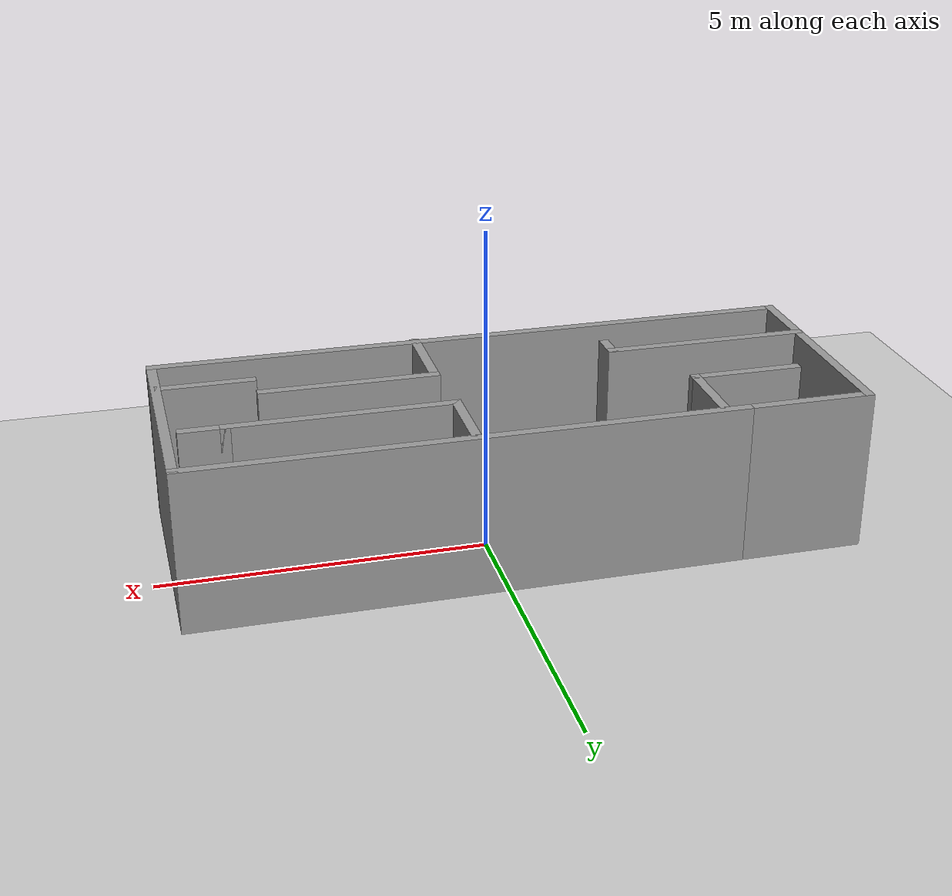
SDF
<sdf version="1.7">
 <world name="default">
  <light name="sun" type="directional">
   <pose>0 0 10 0 -0 0</pose>
   <diffuse>0.8 0.8 0.8 1</diffuse>
   <specular>0.2 0.2 0.2 1</specular>
   <attenuation>
    <range>1000</range>
    <constant>0.9</constant>
    <linear>0.01</linear>
    <quadratic>0.001</quadratic>
   </attenuation>
   <direction>-0.5 0.1 -0.9</direction>
   <spot><inner_angle>0</inner_angle><outer_angle>0</outer_angle><falloff>0</falloff></spot>
  </light>
  <model name="ground_plane">
   <static>1</static>
   <link name="link">
    <collision name="collision">
     <geometry><plane><normal>0 0 1</normal><size>100 100</size></plane></geometry>
     <surface><friction><ode><mu>100</mu><mu2>50</mu2></ode></friction></surface>
    </collision>
    <visual name="visual">
     <cast_shadows>0</cast_shadows>
     <geometry><plane><normal>0 0 1</normal><size>100 100</size></plane></geometry>
     <material>
      <script><uri>file://media/materials/scripts/gazebo.material</uri><name>Gazebo/Grey</name></script>
     </material>
    </visual>
   </link>
  </model>
  <gravity>0 0 -9.8</gravity>
  <magnetic_field>6e-06 2.3e-05 -4.2e-05</magnetic_field>
  <atmosphere type="adiabatic"/>
  <physics type="ode">
   <max_step_size>0.001</max_step_size>
   <real_time_factor>1</real_time_factor>
   <real_time_update_rate>1000</real_time_update_rate>
  </physics>
  <scene><ambient>0.4 0.4 0.4 1</ambient><background>0.7 0.7 0.7 1</background><shadows>1</shadows></scene>
  <audio><device>default</device></audio>
  <spherical_coordinates>
   <surface_model>EARTH_WGS84</surface_model>
   <latitude_deg>0</latitude_deg>
   <longitude_deg>0</longitude_deg>
   <elevation>0</elevation>
   <heading_deg>0</heading_deg>
  </spherical_coordinates>
  <model name="room">
   <pose>-0.391778 -0.298657 0 0 -0 0</pose>
   <link name="Wall_1">
    <collision name="Wall_1_Collision">
     <geometry><box><size>8.5 0.15 2.5</size></box></geometry>
     <pose>0 0 1.25 0 -0 0</pose>
    </collision>
    <visual name="Wall_1_Visual">
     <pose>0 0 1.25 0 -0 0</pose>
     <geometry><box><size>8.5 0.15 2.5</size></box></geometry>
     <material>
      <script><uri>file://media/materials/scripts/gazebo.material</uri><name>Gazebo/Grey</name></script>
      <ambient>1 1 1 1</ambient>
     </material>
     <meta><layer>0</layer></meta>
    </visual>
    <pose>0.875 1.62559 0 0 -0 0</pose>
   </link>
   <link name="Wall_10">
    <collision name="Wall_10_Collision">
     <geometry><box><size>3.25 0.15 2.5</size></box></geometry>
     <pose>0 0 1.25 0 -0 0</pose>
    </collision>
    <visual name="Wall_10_Visual">
     <pose>0 0 1.25 0 -0 0</pose>
     <geometry><box><size>3.25 0.15 2.5</size></box></geometry>
     <material>
      <script><uri>file://media/materials/scripts/gazebo.material</uri><name>Gazebo/Grey</name></script>
      <ambient>1 1 1 1</ambient>
     </material>
     <meta><layer>0</layer></meta>
    </visual>
    <pose>-3.48805 -0.873238 0 0 -0 0</pose>
   </link>
   <link name="Wall_11">
    <collision name="Wall_11_Collision">
     <geometry><box><size>0.5 0.15 2.5</size></box></geometry>
     <pose>0 0 1.25 0 -0 0</pose>
    </collision>
    <visual name="Wall_11_Visual">
     <pose>0 0 1.25 0 -0 0</pose>
     <geometry><box><size>0.5 0.15 2.5</size></box></geometry>
     <material>
      <script><uri>file://media/materials/scripts/gazebo.material</uri><name>Gazebo/Grey</name></script>
      <ambient>1 1 1 1</ambient>
     </material>
     <meta><layer>0</layer></meta>
    </visual>
    <pose>-1.93805 -1.04824 0 0 -0 -1.5708</pose>
   </link>
   <link name="Wall_13">
    <collision name="Wall_13_Collision">
     <geometry><box><size>1.5 0.15 2.5</size></box></geometry>
     <pose>0 0 1.25 0 -0 0</pose>
    </collision>
    <visual name="Wall_13_Visual">
     <pose>0 0 1.25 0 -0 0</pose>
     <geometry><box><size>1.5 0.15 2.5</size></box></geometry>
     <material>
      <script><uri>file://media/materials/scripts/gazebo.material</uri><name>Gazebo/Grey</name></script>
      <ambient>1 1 1 1</ambient>
     </material>
     <meta><layer>0</layer></meta>
    </visual>
    <pose>0.93965 -1.33559 0 0 -0 1.5708</pose>
   </link>
   <link name="Wall_14">
    <collision name="Wall_14_Collision">
     <geometry><box><size>2.75 0.15 2.5</size></box></geometry>
     <pose>0 0 1.25 0 -0 0</pose>
    </collision>
    <visual name="Wall_14_Visual">
     <pose>0 0 1.25 0 -0 0</pose>
     <geometry><box><size>2.75 0.15 2.5</size></box></geometry>
     <material>
      <script><uri>file://media/materials/scripts/gazebo.material</uri><name>Gazebo/Grey</name></script>
      <ambient>1 1 1 1</ambient>
     </material>
     <meta><layer>0</layer></meta>
    </visual>
    <pose>2.23965 -0.660588 0 0 -0 0</pose>
   </link>
   <link name="Wall_16">
    <collision name="Wall_16_Collision">
     <geometry><box><size>1.5 0.15 2.5</size></box></geometry>
     <pose>0 0 1.25 0 -0 0</pose>
    </collision>
    <visual name="Wall_16_Visual">
     <pose>0 0 1.25 0 -0 0</pose>
     <geometry><box><size>1.5 0.15 2.5</size></box></geometry>
     <material>
      <script><uri>file://media/materials/scripts/gazebo.material</uri><name>Gazebo/Grey</name></script>
      <ambient>1 1 1 1</ambient>
     </material>
     <meta><layer>0</layer></meta>
    </visual>
    <pose>4.31255 -1.15096 0 0 -0 0</pose>
   </link>
   <link name="Wall_18">
    <collision name="Wall_18_Collision">
     <geometry><box><size>1.25 0.15 2.5</size></box></geometry>
     <pose>0 0 1.25 0 -0 0</pose>
    </collision>
    <visual name="Wall_18_Visual">
     <pose>0 0 1.25 0 -0 0</pose>
     <geometry><box><size>1.25 0.15 2.5</size></box></geometry>
     <material>
      <script><uri>file://media/materials/scripts/gazebo.material</uri><name>Gazebo/Grey</name></script>
      <ambient>1 1 1 1</ambient>
     </material>
     <meta><layer>0</layer></meta>
    </visual>
    <pose>0.8603 0.957263 0 0 -0 -1.5708</pose>
   </link>
   <link name="Wall_19">
    <collision name="Wall_19_Collision">
     <geometry><box><size>3.5 0.15 2.5</size></box></geometry>
     <pose>0 0 1.25 0 -0 0</pose>
    </collision>
    <visual name="Wall_19_Visual">
     <pose>0 0 1.25 0 -0 0</pose>
     <geometry><box><size>3.5 0.15 2.5</size></box></geometry>
     <material>
      <script><uri>file://media/materials/scripts/gazebo.material</uri><name>Gazebo/Grey</name></script>
      <ambient>1 1 1 1</ambient>
     </material>
     <meta><layer>0</layer></meta>
    </visual>
    <pose>2.5353 0.407262 0 0 -0 0</pose>
   </link>
   <link name="Wall_2">
    <collision name="Wall_2_Collision">
     <geometry><box><size>3.75 0.15 2.5</size></box></geometry>
     <pose>0 0 1.25 0 -0 0</pose>
    </collision>
    <visual name="Wall_2_Visual">
     <pose>0 0 1.25 0 -0 0</pose>
     <geometry><box><size>3.75 0.15 2.5</size></box></geometry>
     <material>
      <script><uri>file://media/materials/scripts/gazebo.material</uri><name>Gazebo/Grey</name></script>
      <ambient>1 1 1 1</ambient>
     </material>
     <meta><layer>0</layer></meta>
    </visual>
    <pose>5.05 -0.174412 0 0 -0 -1.5708</pose>
   </link>
   <link name="Wall_20">
    <collision name="Wall_20_Collision">
     <geometry><box><size>0.75 0.15 2.5</size></box></geometry>
     <pose>0 0 1.25 0 -0 0</pose>
    </collision>
    <visual name="Wall_20_Visual">
     <pose>0 0 1.25 0 -0 0</pose>
     <geometry><box><size>0.75 0.15 2.5</size></box></geometry>
     <material>
      <script><uri>file://media/materials/scripts/gazebo.material</uri><name>Gazebo/Grey</name></script>
      <ambient>1 1 1 1</ambient>
     </material>
     <meta><layer>0</layer></meta>
    </visual>
    <pose>4.5103 0.407262 0 0 -0 0</pose>
   </link>
   <link name="Wall_3">
    <collision name="Wall_3_Collision">
     <geometry><box><size>10.25 0.15 2.5</size></box></geometry>
     <pose>0 0 1.25 0 -0 0</pose>
    </collision>
    <visual name="Wall_3_Visual">
     <pose>0 0 1.25 0 -0 0</pose>
     <geometry><box><size>10.25 0.15 2.5</size></box></geometry>
     <material>
      <script><uri>file://media/materials/scripts/gazebo.material</uri><name>Gazebo/Grey</name></script>
      <ambient>1 1 1 1</ambient>
     </material>
     <meta><layer>0</layer></meta>
    </visual>
    <pose>0 -1.97441 0 0 -0 3.14159</pose>
   </link>
   <link name="Wall_4">
    <collision name="Wall_4_Collision">
     <geometry><box><size>3.75 0.15 2.5</size></box></geometry>
     <pose>0 0 1.25 0 -0 0</pose>
    </collision>
    <visual name="Wall_4_Visual">
     <pose>0 0 1.25 0 -0 0</pose>
     <geometry><box><size>3.75 0.15 2.5</size></box></geometry>
     <material>
      <script><uri>file://media/materials/scripts/gazebo.material</uri><name>Gazebo/Grey</name></script>
      <ambient>1 1 1 1</ambient>
     </material>
     <meta><layer>0</layer></meta>
    </visual>
    <pose>-5.05 -0.174412 0 0 -0 1.5708</pose>
   </link>
   <link name="Wall_5">
    <collision name="Wall_5_Collision">
     <geometry><box><size>1.9 0.15 2.5</size></box></geometry>
     <pose>0 0 1.25 0 -0 0</pose>
    </collision>
    <visual name="Wall_5_Visual">
     <pose>0 0 1.25 0 -0 0</pose>
     <geometry><box><size>1.9 0.15 2.5</size></box></geometry>
     <material>
      <script><uri>file://media/materials/scripts/gazebo.material</uri><name>Gazebo/Grey</name></script>
      <ambient>1 1 1 1</ambient>
     </material>
     <meta><layer>0</layer></meta>
    </visual>
    <pose>-4.175 1.62559 0 0 -0 0</pose>
   </link>
   <link name="Wall_7">
    <collision name="Wall_7_Collision">
     <geometry><box><size>1.25 0.15 2.5</size></box></geometry>
     <pose>0 0 1.25 0 -0 0</pose>
    </collision>
    <visual name="Wall_7_Visual">
     <pose>0 0 1.25 0 -0 0</pose>
     <geometry><box><size>1.25 0.15 2.5</size></box></geometry>
     <material>
      <script><uri>file://media/materials/scripts/gazebo.material</uri><name>Gazebo/Grey</name></script>
      <ambient>1 1 1 1</ambient>
     </material>
     <meta><layer>0</layer></meta>
    </visual>
    <pose>-2.82947 0.957263 0 0 -0 -1.5708</pose>
   </link>
   <link name="Wall_8">
    <collision name="Wall_8_Collision">
     <geometry><box><size>1.75 0.15 2.5</size></box></geometry>
     <pose>0 0 1.25 0 -0 0</pose>
    </collision>
    <visual name="Wall_8_Visual">
     <pose>0 0 1.25 0 -0 0</pose>
     <geometry><box><size>1.75 0.15 2.5</size></box></geometry>
     <material>
      <script><uri>file://media/materials/scripts/gazebo.material</uri><name>Gazebo/Grey</name></script>
      <ambient>1 1 1 1</ambient>
     </material>
     <meta><layer>0</layer></meta>
    </visual>
    <pose>-3.62947 0.407262 0 0 -0 3.14159</pose>
   </link>
   <static>1</static>
  </model>
 </world>
</sdf>
